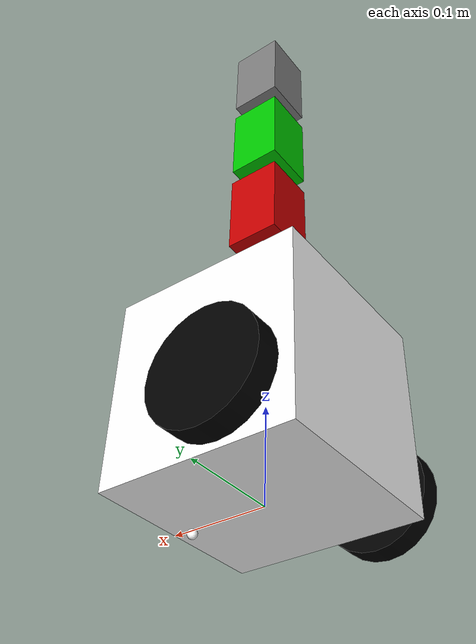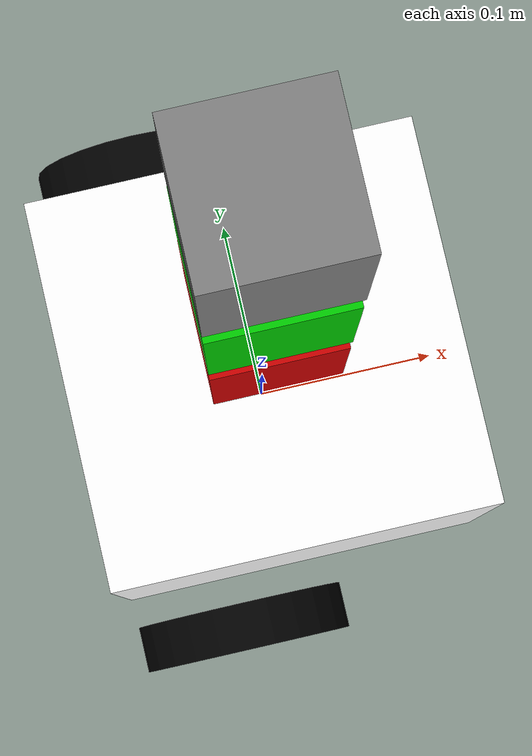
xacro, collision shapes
<?xml version="1.0"?>

<robot name="mobileRoboticArm" xmlns:xacro="http://ros.org/wiki/xacro">

	<!--Materials Start-->
	<material name="black">
		<color rgba="0.0 0.0 0.0 1.0"/>
	</material>

	<material name="white">
		<color rgba="1.0 1.0 1.0 1.0"/>
	</material>

	<material name="red">
		<color rgba="0.8 0.0 0.0 1.0"/>
	</material>

	<material name="blue">
		<color rgba="0.0 0.0 0.8 1.0"/>
	</material>

	<material name="green">
		<color rgba="0.0 0.8 0.0 1.0"/>
	</material>

	<material name="grey">
		<color rgba="0.5 0.5 0.5 1.0"/>
	</material>

	<material name="orange">
		<color rgba="${255/255} ${108/255} ${10/255} 1.0"/>
	</material>

	<material name="brown">
		<color rgba="${222/255} ${207/255} ${195/255} 1.0"/>
	</material>

	<gazebo reference="base_link"><material>Gazebo/Black</material></gazebo>
	<gazebo reference="wheel_left"><material>Gazebo/Grey</material></gazebo>
	<gazebo reference="wheel_right"><material>Gazebo/Grey</material></gazebo>
	<gazebo reference="armLink0"><material>Gazebo/Orange</material></gazebo>
	<gazebo reference="armLink1"><material>Gazebo/Orange</material></gazebo>
	<gazebo reference="armLink2"><material>Gazebo/Orange</material></gazebo>
	<gazebo reference="armLink3"><material>Gazebo/Orange</material></gazebo>
	<!--Materials End-->

	<xacro:property name="base_height" value="0.2" /> <!--x direction -->
	<xacro:property name="base_width" value="0.2" /> <!--y direction -->
	<xacro:property name="base_depth" value="0.20" /> <!--z direction -->
	<xacro:property name="base_mass" value="1.488" /> <!--base mass -->

	<xacro:property name="ball_wheel_radius" value="0.005" /> <!--base wheel radius -->
	<xacro:property name="wheel_radius" value="0.06" /> <!--wheel radius -->
	<xacro:property name="wheel_thickness" value="0.03" /> <!--wheel thickness -->
	<xacro:property name="wheel_mass" value="0.240" /> <!--wheel mass-->

	<xacro:property name="arm_height" value="0.06" /> <!--x direction -->
	<xacro:property name="arm_width" value="0.06" /> <!--y direction -->
	<xacro:property name="arm_depth" value="0.10" /> <!--z direction -->
	<xacro:property name="arm_mass" value="0.168" /> <!--arm mass -->

	<!--MACROS START-->

	<!--Inertial Macro-->
	<xacro:macro name="default_inertial" params="mass ixx:=1 ixy:=0 ixz:=0 iyy:=1 iyz:=0 izz:=1">
		<inertial>
			<origin xyz="0 0 0" rpy="0 0 0"/>
			<mass value="${mass}"/>
			<inertia ixx="${ixx}" ixy="${ixy}" ixz="${ixz}" iyy="${iyy}" iyz="${iyz}" izz="${izz}"/>
		</inertial>
	</xacro:macro>
	<!--Inertial Macro-->

	<!--Arm Link Macro-->
	<xacro:macro name="arm_link" params="suffix parent reflect height color mesh_path mass joint_type lower_limit upper_limit axis_x axis_y axis_z ixx:=1 ixy:=0 ixz:=0 iyy:=1 iyz:=0 izz:=1 arm_width_ arm_height_ arm_depth_ motor=0 jointInterface=Position ">
		<link name="armLink${suffix}">
			<visual>
				<origin xyz="0 0 0" rpy="0 0 0"/>
				<geometry>
					<!--mesh filename="package://innomech/meshes/linked_mx_64t.stl" scale="0.01 0.01 0.01"/-->
					<mesh filename="${mesh_path}" scale="0.01 0.01 0.01"/>
				</geometry>
				<material name="${color}"/>
			</visual>

			<collision>
				<origin xyz="0 0 ${(1-motor)*arm_depth_}" rpy="0 0 0"/>
				<geometry>
					<box size="${arm_width_} ${arm_height_} ${arm_depth_}" />
				</geometry>
			</collision>
			<xacro:default_inertial mass="${mass}" ixx="${ixx}"  ixy="${ixy}" ixz="${ixz}" iyy="${iyy}" iyz="${iyz}" izz="${izz}"/>
		</link>

		<!-- Joint-->
		<joint name="${parent}_armLink${suffix}_joint" type="${joint_type}">
			<parent link="${parent}"/>
			<child link="armLink${suffix}"/>
			<origin xyz="0 0 ${height}" rpy="0 0 0"/>
			<axis xyz="${axis_x} ${axis_y} ${axis_z}"/>
			<limit velocity="4.8" effort="1" lower="${lower_limit}" upper="${upper_limit}" />
		</joint>

		<transmission name="armLink${suffix}_transmission" type="SimpleTransmission">
			<type>transmission_interface/SimpleTransmission</type>
			<actuator name="armLink${suffix}_motor">

				<hardwareInterface>hardware_interface/${jointInterface}JointInterface</hardwareInterface>
			</actuator>
			<joint name="${parent}_armLink${suffix}_joint">
				<hardwareInterface>hardware_interface/${jointInterface}JointInterface</hardwareInterface>
			</joint>
		</transmission>
	</xacro:macro>
	<!--Arm Link Macro-->

	<!--Wheel Macro-->
	<xacro:macro name="wheel_link" params="suffix parent reflect height color mesh_path mass joint_type:=continuous ixx:=1 ixy:=0 ixz:=0 iyy:=1 iyz:=0 izz:=1">
		<link name="wheel_${suffix}">
			<visual>
				<origin xyz="0 0 0" rpy="${-reflect*pi/2} 0 0"/>
				<geometry>
					<!--mesh filename="package://innomech/meshes/wheel_left_link2.stl" scale="0.01 0.01 0.01"/-->
					<mesh filename="${mesh_path}" scale="0.01 0.01 0.01"/>
				</geometry>
				<material name="${color}"/>
			</visual>

			<collision>
				<origin xyz="0 0 0" rpy="${-reflect*pi/2} 0 0"/>
				<geometry>
					<cylinder radius="0.057" length="0.025"/>
				</geometry>
				<surface>
					<friction>
						<ode>
							<kp>1000000</kp>
							<kd>1</kd>
							<mu>0.5</mu>
							<mu2>0.5</mu2>
						</ode>
					</friction>
				</surface>
			</collision>
			<xacro:default_inertial mass="${mass}"
				ixx="${wheel_mass*(3*wheel_radius*wheel_radius*wheel_radius+wheel_thickness*wheel_thickness)/12}"
				iyy="${wheel_mass*(3*wheel_radius*wheel_radius*wheel_radius+wheel_thickness*wheel_thickness)/12}"
				izz="${wheel_mass*wheel_radius*wheel_radius/2}"/>
		</link>

		<!-- Joint-->
		<joint name="wheel_${suffix}_joint" type="${joint_type}">
			<parent link="${parent}"/>
			<child link="wheel_${suffix}"/>
			<origin xyz="-0.04 ${reflect*0.13} 0.05" rpy="0 0 0"/>
			<axis xyz="0 1 0"/>
			<!--limit velocity="4.8" effort="1" lower="${-pi}" upper="${pi}" /-->
		</joint>

		<transmission name="wheel_${suffix}_transmission" type="SimpleTransmission">
			<type>transmission_interface/SimpleTransmission</type>
			<actuator name="$wheel_${suffix}_motor">
				<mechanicalReduction>1</mechanicalReduction>
				<hardwareInterface>VelocityJointInterface</hardwareInterface>
			</actuator>

			<joint name="wheel_${suffix}_joint">
				<hardwareInterface>hardware_interface/VelocityJointInterface</hardwareInterface>
			</joint>
		</transmission>
	</xacro:macro>
	<!--Wheel Macro-->

	<!--MACROS END-->

	<!-- Base_link -->
	<link name="base_link">
		<visual>
			<origin xyz="0 0 0" rpy="0 0 0"/>
			<geometry>
				<mesh filename="package://innomech/meshes/base_link2.stl" scale="0.01 0.01 0.01"/>
			</geometry>
			<material name="white"/>
		</visual>

		<collision>
			<origin xyz="0 0 0.1" rpy="0 0 0"/>
			<geometry>
				<box size="${base_height} ${base_width} ${base_depth}" />
			</geometry>
		</collision>

		<xacro:default_inertial mass="${base_mass}"
			ixx="${base_mass*(base_width*base_width+base_depth*base_depth)/12}"
			iyy="${base_mass*(base_height*base_height+base_depth*base_depth)/12}"
			izz="${base_mass*(base_width*base_width+base_height*base_height)/24}" />
	</link>

	<!-- Point Wheel 1-->
	<link name="point_wheel">
		<visual>
			<origin xyz="0 0 0" rpy="0 0 0"/>
			<geometry>
				<sphere radius="0.005"/>
			</geometry>
			<material name="white"/>
		</visual>

		<collision>
			<origin xyz="0 0 0" rpy="0 0 0"/>
			<geometry>
				<sphere radius="0.005"/>
			</geometry>
			<surface>
				<friction>
					<ode>
						<mu>0.00001</mu>
						<mu2>0.8</mu2>
						<kp  value="10000000.0" />
						<kd  value="1.0" />

					</ode>
				</friction>
			</surface>
		</collision>
		<xacro:default_inertial mass="0.005"
			ixx="${ball_wheel_radius*ball_wheel_radius*0.005*2/5}"
			iyy="${ball_wheel_radius*ball_wheel_radius*0.005*2/5}"
			izz="${ball_wheel_radius*ball_wheel_radius*0.005*2/5}"/>
	</link>

	<joint name="point_wheel_joint" type="continuous">
			<parent link="base_link"/>
			<child link="point_wheel"/>
			<origin xyz="0.08 0.0 -0.0030" rpy="0 0 0"/>
			<axis xyz="1 0 0"/>
	</joint>

	<!-- Left Wheel -->
	<xacro:wheel_link suffix="left" parent="base_link" reflect="1" height="1" color="black" mesh_path="package://innomech/meshes/wheel_left_link2.stl" mass="0.240" ixx="0.0002285" ixy="0.0" ixz="0.0" iyy="0.0002285" iyz="0.0" izz="0.000432"/>
	<!-- Left Wheel -->

	<!-- Right Wheel -->
	<xacro:wheel_link suffix="right" parent="base_link" reflect="-1" height="1" color="black" mesh_path="package://innomech/meshes/wheel_left_link2.stl" mass="0.240" ixx="0.0002285" ixy="0.0" ixz="0.0" iyy="0.0002285" iyz="0.0" izz="0.000432"/>
	<!-- Right Wheel -->

	<!--Link0 -->
	<xacro:arm_link suffix="0" parent="base_link" reflect="1" height="0.25" color="orange" mesh_path="package://innomech/meshes/mx-64t2.stl" mass="0.135" joint_type="revolute" lower_limit="${-pi/2}" upper_limit="${pi/2}" axis_x="0" axis_y="0" axis_z="1"
		arm_width_="0.04" arm_height_="0.04" arm_depth_="0.04" motor="1.0" jointInterface="Position"/>
	<!-- Link0 -->

	<!-- Link1 -->
	<xacro:arm_link suffix="1" parent="armLink0" reflect="1" height="0.0" color="red" mesh_path="package://innomech/meshes/linked_mx_64t.stl" mass="0.168" joint_type="revolute" lower_limit="${-pi/4}" upper_limit="${pi/4}" axis_x="0" axis_y="1" axis_z="0"
		ixx="${arm_mass*(arm_width*arm_width+arm_depth*arm_depth)/12}"
		iyy="${arm_mass*(arm_height*arm_height+arm_depth*arm_depth)/12}"
		izz="${arm_mass*(arm_width*arm_width+arm_height*arm_height)/12}"
		arm_width_="${arm_width}" arm_height_="${arm_height}" arm_depth_="${arm_depth}"/>
	<!-- Link1 -->

	<!-- Link2 -->
	<xacro:arm_link suffix="2" parent="armLink1" reflect="1" height="0.12" color="green" mesh_path="package://innomech/meshes/linked_mx_64t.stl" mass="0.168" joint_type="revolute" lower_limit="${-pi/4}" upper_limit="${pi/4}" axis_x="0" axis_y="1" axis_z="0" 	ixx="${arm_mass*(arm_width*arm_width+arm_depth*arm_depth)/12}"
		iyy="${arm_mass*(arm_height*arm_height+arm_depth*arm_depth)/12}"
		izz="${arm_mass*(arm_width*arm_width+arm_height*arm_height)/12}"
		arm_width_="${arm_width}" arm_height_="${arm_height}" arm_depth_="${arm_depth}"/>
	<!-- Link2 -->

	<!-- Link3 -->
	<xacro:arm_link suffix="3" parent="armLink2" reflect="1" height="0.12" color="grey" mesh_path="package://innomech/meshes/linked_mx_64t.stl" mass="0.168" joint_type="revolute" lower_limit="${-pi/4}" upper_limit="${pi/4}" axis_x="0" axis_y="1" axis_z="0" 	ixx="${arm_mass*(arm_width*arm_width+arm_depth*arm_depth)/12}"
		iyy="${arm_mass*(arm_height*arm_height+arm_depth*arm_depth)/12}"
		izz="${arm_mass*(arm_width*arm_width+arm_height*arm_height)/12}"
		arm_width_="${arm_width}" arm_height_="${arm_height}" arm_depth_="${arm_depth}"/>

	<!-- Link3 -->

	<gazebo>
		<plugin name="gazebo_ros_control" filename="libgazebo_ros_control.so">
			<robotNamespace>/</robotNamespace>
		</plugin>
	</gazebo>

</robot>
